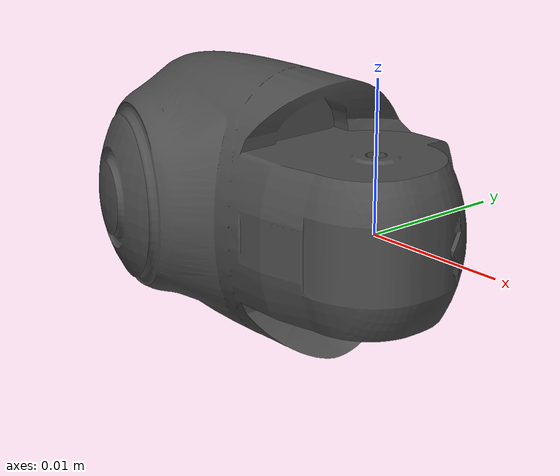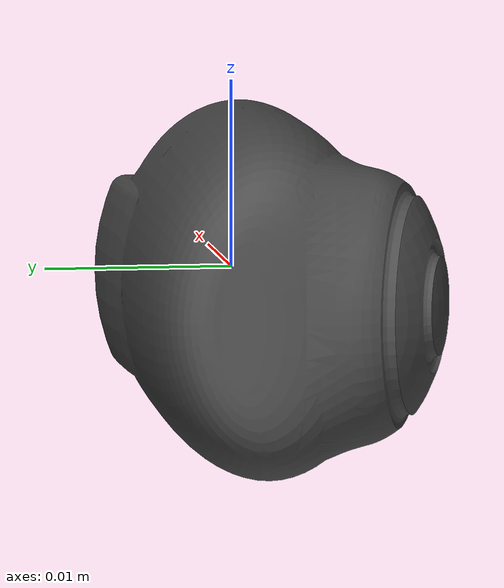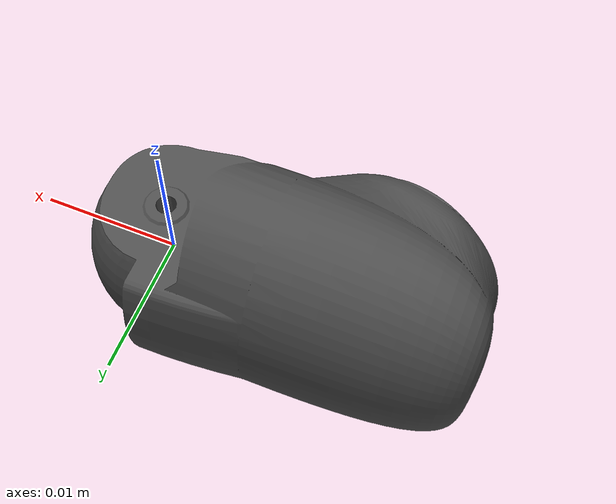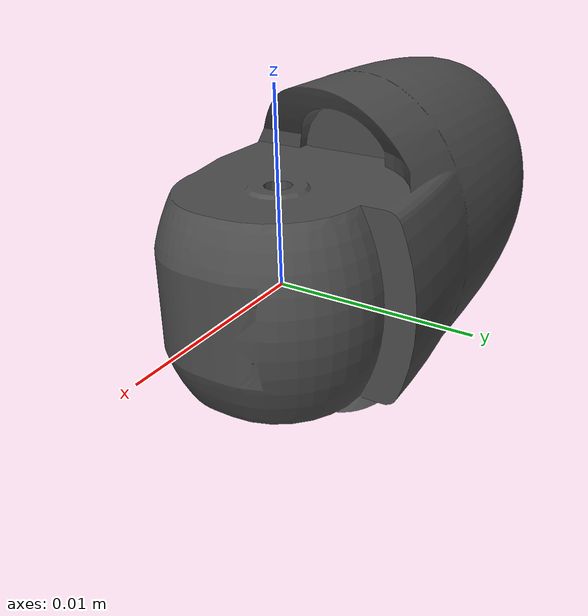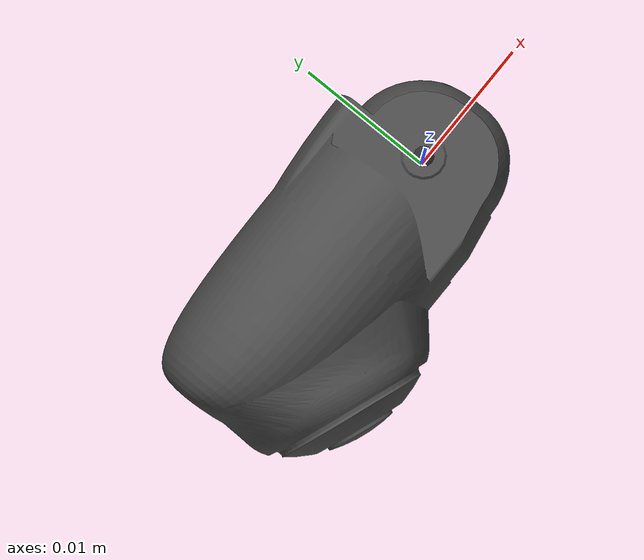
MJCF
<mujoco model="tip_link">
  <default>
    <default class="visual">
      <geom group="2" type="mesh" contype="0" conaffinity="0"/>
    </default>
    <default class="collision">
      <geom group="3" type="mesh"/>
    </default>
  </default>
  <asset>
    <material name="mtl_tip_link" specular="0.20000000000000004" shininess="1.0" rgba="0.29803922 0.29803922 0.29803922 1.0"/>
    <mesh file="tip_link.obj"/>
  </asset>
  <worldbody>
    <body name="tip_link">
      <geom material="mtl_tip_link" mesh="tip_link" class="visual"/>
      <geom mesh="tip_link" class="collision"/>
    </body>
  </worldbody>
</mujoco>
